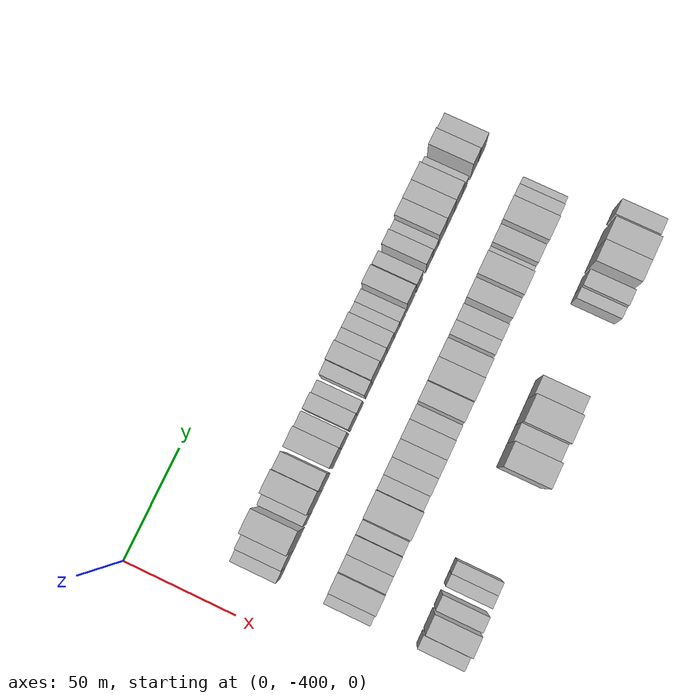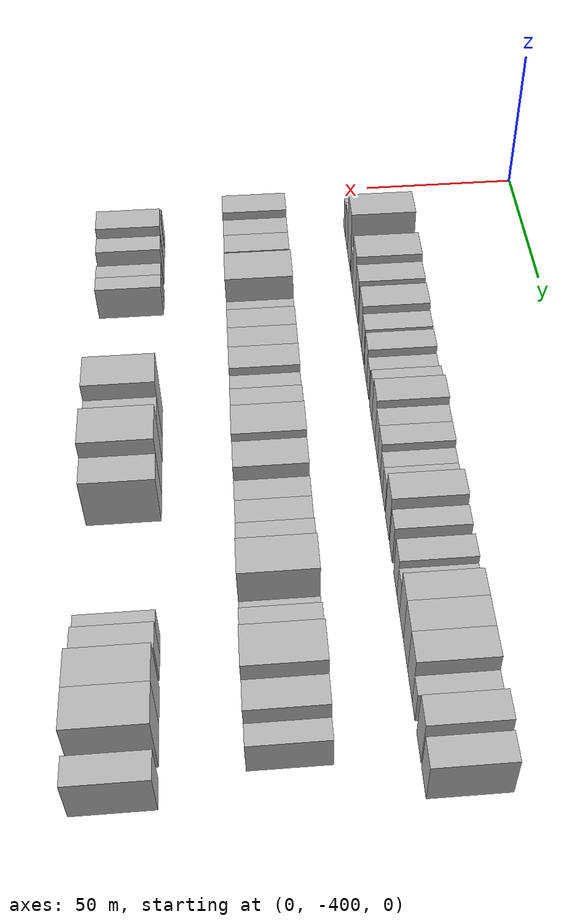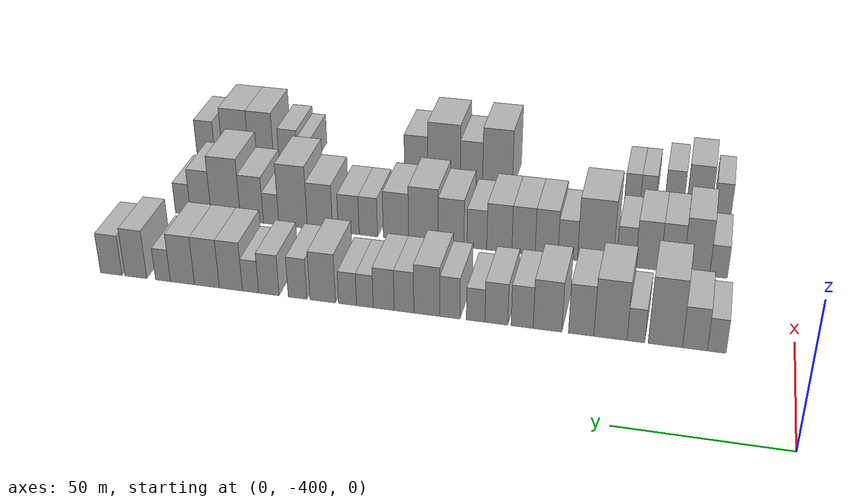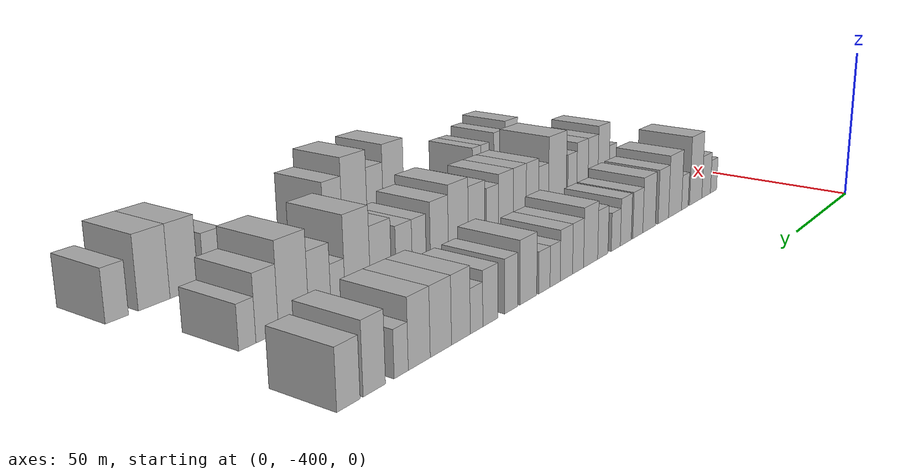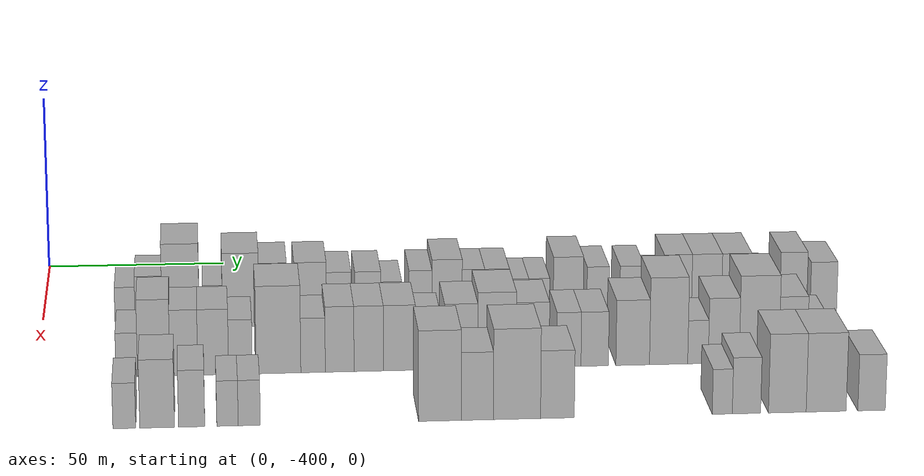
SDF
<sdf version="1.6">
 <world name="default">
  <model name="building_1">
   <static>1</static>
   <pose>50.0000 -377.2630 0 0.000000 0.000000 0.000000</pose>
   <link name="link">
    <pose>0 0 6.00 0 0 0</pose>
    <collision name="collision"><geometry><box><size>20.0000 5.4741 12.0000</size></box></geometry></collision>
    <visual name="visual">
     <cast_shadows>0</cast_shadows>
     <geometry><box><size>20.0000 5.4741 12.0000</size></box></geometry>
     <material>
      <script>
       <uri>model://HANNAS_wall/materials/scripts</uri>
       <uri>model://HANNAS_wall/materials/textures</uri>
       <name>vrc/HANNAS_wall</name>
      </script>
     </material>
    </visual>
   </link>
  </model>
  <model name="building_2">
   <static>1</static>
   <pose>50.0000 -370.8622 0 0.000000 0.000000 0.000000</pose>
   <link name="link">
    <pose>0 0 7.50 0 0 0</pose>
    <collision name="collision"><geometry><box><size>20.0000 7.3275 15.0000</size></box></geometry></collision>
    <visual name="visual">
     <cast_shadows>0</cast_shadows>
     <geometry><box><size>20.0000 7.3275 15.0000</size></box></geometry>
     <material>
      <script>
       <uri>model://HANNAS_wall/materials/scripts</uri>
       <uri>model://HANNAS_wall/materials/textures</uri>
       <name>vrc/HANNAS_wall</name>
      </script>
     </material>
    </visual>
   </link>
  </model>
  <model name="building_3">
   <static>1</static>
   <pose>50.0000 -362.1280 0 0.000000 0.000000 0.000000</pose>
   <link name="link">
    <pose>0 0 12.00 0 0 0</pose>
    <collision name="collision"><geometry><box><size>20.0000 10.1409 24.0000</size></box></geometry></collision>
    <visual name="visual">
     <cast_shadows>0</cast_shadows>
     <geometry><box><size>20.0000 10.1409 24.0000</size></box></geometry>
     <material>
      <script>
       <uri>model://HANNAS_wall/materials/scripts</uri>
       <uri>model://HANNAS_wall/materials/textures</uri>
       <name>vrc/HANNAS_wall</name>
      </script>
     </material>
    </visual>
   </link>
  </model>
  <model name="building_4">
   <static>1</static>
   <pose>50.0000 -353.3951 0 0.000000 0.000000 0.000000</pose>
   <link name="link">
    <pose>0 0 6.00 0 0 0</pose>
    <collision name="collision"><geometry><box><size>20.0000 5.3250 12.0000</size></box></geometry></collision>
    <visual name="visual">
     <cast_shadows>0</cast_shadows>
     <geometry><box><size>20.0000 5.3250 12.0000</size></box></geometry>
     <material>
      <script>
       <uri>model://HANNAS_wall/materials/scripts</uri>
       <uri>model://HANNAS_wall/materials/textures</uri>
       <name>vrc/HANNAS_wall</name>
      </script>
     </material>
    </visual>
   </link>
  </model>
  <model name="building_5">
   <static>1</static>
   <pose>50.0000 -345.7569 0 0.000000 0.000000 0.000000</pose>
   <link name="link">
    <pose>0 0 10.50 0 0 0</pose>
    <collision name="collision"><geometry><box><size>20.0000 9.9514 21.0000</size></box></geometry></collision>
    <visual name="visual">
     <cast_shadows>0</cast_shadows>
     <geometry><box><size>20.0000 9.9514 21.0000</size></box></geometry>
     <material>
      <script>
       <uri>model://HANNAS_wall/materials/scripts</uri>
       <uri>model://HANNAS_wall/materials/textures</uri>
       <name>vrc/HANNAS_wall</name>
      </script>
     </material>
    </visual>
   </link>
  </model>
  <model name="building_6">
   <static>1</static>
   <pose>50.0000 -336.9452 0 0.000000 0.000000 0.000000</pose>
   <link name="link">
    <pose>0 0 9.00 0 0 0</pose>
    <collision name="collision"><geometry><box><size>20.0000 7.6719 18.0000</size></box></geometry></collision>
    <visual name="visual">
     <cast_shadows>0</cast_shadows>
     <geometry><box><size>20.0000 7.6719 18.0000</size></box></geometry>
     <material>
      <script>
       <uri>model://HANNAS_wall/materials/scripts</uri>
       <uri>model://HANNAS_wall/materials/textures</uri>
       <name>vrc/HANNAS_wall</name>
      </script>
     </material>
    </visual>
   </link>
  </model>
  <model name="building_7">
   <static>1</static>
   <pose>50.0000 -326.7164 0 0.000000 0.000000 0.000000</pose>
   <link name="link">
    <pose>0 0 9.00 0 0 0</pose>
    <collision name="collision"><geometry><box><size>20.0000 8.7857 18.0000</size></box></geometry></collision>
    <visual name="visual">
     <cast_shadows>0</cast_shadows>
     <geometry><box><size>20.0000 8.7857 18.0000</size></box></geometry>
     <material>
      <script>
       <uri>model://HANNAS_wall/materials/scripts</uri>
       <uri>model://HANNAS_wall/materials/textures</uri>
       <name>vrc/HANNAS_wall</name>
      </script>
     </material>
    </visual>
   </link>
  </model>
  <model name="building_8">
   <static>1</static>
   <pose>50.0000 -318.9342 0 0.000000 0.000000 0.000000</pose>
   <link name="link">
    <pose>0 0 7.50 0 0 0</pose>
    <collision name="collision"><geometry><box><size>20.0000 6.7786 15.0000</size></box></geometry></collision>
    <visual name="visual">
     <cast_shadows>0</cast_shadows>
     <geometry><box><size>20.0000 6.7786 15.0000</size></box></geometry>
     <material>
      <script>
       <uri>model://HANNAS_wall/materials/scripts</uri>
       <uri>model://HANNAS_wall/materials/textures</uri>
       <name>vrc/HANNAS_wall</name>
      </script>
     </material>
    </visual>
   </link>
  </model>
  <model name="building_9">
   <static>1</static>
   <pose>50.0000 -310.9785 0 0.000000 0.000000 0.000000</pose>
   <link name="link">
    <pose>0 0 7.50 0 0 0</pose>
    <collision name="collision"><geometry><box><size>20.0000 7.1328 15.0000</size></box></geometry></collision>
    <visual name="visual">
     <cast_shadows>0</cast_shadows>
     <geometry><box><size>20.0000 7.1328 15.0000</size></box></geometry>
     <material>
      <script>
       <uri>model://HANNAS_wall/materials/scripts</uri>
       <uri>model://HANNAS_wall/materials/textures</uri>
       <name>vrc/HANNAS_wall</name>
      </script>
     </material>
    </visual>
   </link>
  </model>
  <model name="building_10">
   <static>1</static>
   <pose>50.0000 -304.5359 0 0.000000 0.000000 0.000000</pose>
   <link name="link">
    <pose>0 0 6.00 0 0 0</pose>
    <collision name="collision"><geometry><box><size>20.0000 5.7526 12.0000</size></box></geometry></collision>
    <visual name="visual">
     <cast_shadows>0</cast_shadows>
     <geometry><box><size>20.0000 5.7526 12.0000</size></box></geometry>
     <material>
      <script>
       <uri>model://HANNAS_wall/materials/scripts</uri>
       <uri>model://HANNAS_wall/materials/textures</uri>
       <name>vrc/HANNAS_wall</name>
      </script>
     </material>
    </visual>
   </link>
  </model>
  <model name="building_11">
   <static>1</static>
   <pose>50.0000 -296.5135 0 0.000000 0.000000 0.000000</pose>
   <link name="link">
    <pose>0 0 7.50 0 0 0</pose>
    <collision name="collision"><geometry><box><size>20.0000 6.2922 15.0000</size></box></geometry></collision>
    <visual name="visual">
     <cast_shadows>0</cast_shadows>
     <geometry><box><size>20.0000 6.2922 15.0000</size></box></geometry>
     <material>
      <script>
       <uri>model://HANNAS_wall/materials/scripts</uri>
       <uri>model://HANNAS_wall/materials/textures</uri>
       <name>vrc/HANNAS_wall</name>
      </script>
     </material>
    </visual>
   </link>
  </model>
  <model name="building_12">
   <static>1</static>
   <pose>50.0000 -289.2329 0 0.000000 0.000000 0.000000</pose>
   <link name="link">
    <pose>0 0 9.00 0 0 0</pose>
    <collision name="collision"><geometry><box><size>20.0000 8.2688 18.0000</size></box></geometry></collision>
    <visual name="visual">
     <cast_shadows>0</cast_shadows>
     <geometry><box><size>20.0000 8.2688 18.0000</size></box></geometry>
     <material>
      <script>
       <uri>model://HANNAS_wall/materials/scripts</uri>
       <uri>model://HANNAS_wall/materials/textures</uri>
       <name>vrc/HANNAS_wall</name>
      </script>
     </material>
    </visual>
   </link>
  </model>
  <model name="building_13">
   <static>1</static>
   <pose>50.0000 -281.9908 0 0.000000 0.000000 0.000000</pose>
   <link name="link">
    <pose>0 0 7.50 0 0 0</pose>
    <collision name="collision"><geometry><box><size>20.0000 6.2154 15.0000</size></box></geometry></collision>
    <visual name="visual">
     <cast_shadows>0</cast_shadows>
     <geometry><box><size>20.0000 6.2154 15.0000</size></box></geometry>
     <material>
      <script>
       <uri>model://HANNAS_wall/materials/scripts</uri>
       <uri>model://HANNAS_wall/materials/textures</uri>
       <name>vrc/HANNAS_wall</name>
      </script>
     </material>
    </visual>
   </link>
  </model>
  <model name="building_14">
   <static>1</static>
   <pose>50.0000 -275.5094 0 0.000000 0.000000 0.000000</pose>
   <link name="link">
    <pose>0 0 7.50 0 0 0</pose>
    <collision name="collision"><geometry><box><size>20.0000 6.7475 15.0000</size></box></geometry></collision>
    <visual name="visual">
     <cast_shadows>0</cast_shadows>
     <geometry><box><size>20.0000 6.7475 15.0000</size></box></geometry>
     <material>
      <script>
       <uri>model://HANNAS_wall/materials/scripts</uri>
       <uri>model://HANNAS_wall/materials/textures</uri>
       <name>vrc/HANNAS_wall</name>
      </script>
     </material>
    </visual>
   </link>
  </model>
  <model name="building_15">
   <static>1</static>
   <pose>50.0000 -269.4608 0 0.000000 0.000000 0.000000</pose>
   <link name="link">
    <pose>0 0 6.00 0 0 0</pose>
    <collision name="collision"><geometry><box><size>20.0000 5.3496 12.0000</size></box></geometry></collision>
    <visual name="visual">
     <cast_shadows>0</cast_shadows>
     <geometry><box><size>20.0000 5.3496 12.0000</size></box></geometry>
     <material>
      <script>
       <uri>model://HANNAS_wall/materials/scripts</uri>
       <uri>model://HANNAS_wall/materials/textures</uri>
       <name>vrc/HANNAS_wall</name>
      </script>
     </material>
    </visual>
   </link>
  </model>
  <model name="building_16">
   <static>1</static>
   <pose>50.0000 -263.8933 0 0.000000 0.000000 0.000000</pose>
   <link name="link">
    <pose>0 0 6.00 0 0 0</pose>
    <collision name="collision"><geometry><box><size>20.0000 5.7854 12.0000</size></box></geometry></collision>
    <visual name="visual">
     <cast_shadows>0</cast_shadows>
     <geometry><box><size>20.0000 5.7854 12.0000</size></box></geometry>
     <material>
      <script>
       <uri>model://HANNAS_wall/materials/scripts</uri>
       <uri>model://HANNAS_wall/materials/textures</uri>
       <name>vrc/HANNAS_wall</name>
      </script>
     </material>
    </visual>
   </link>
  </model>
  <model name="building_17">
   <static>1</static>
   <pose>50.0000 -255.8511 0 0.000000 0.000000 0.000000</pose>
   <link name="link">
    <pose>0 0 9.00 0 0 0</pose>
    <collision name="collision"><geometry><box><size>20.0000 8.2990 18.0000</size></box></geometry></collision>
    <visual name="visual">
     <cast_shadows>0</cast_shadows>
     <geometry><box><size>20.0000 8.2990 18.0000</size></box></geometry>
     <material>
      <script>
       <uri>model://HANNAS_wall/materials/scripts</uri>
       <uri>model://HANNAS_wall/materials/textures</uri>
       <name>vrc/HANNAS_wall</name>
      </script>
     </material>
    </visual>
   </link>
  </model>
  <model name="building_18">
   <static>1</static>
   <pose>50.0000 -247.6414 0 0.000000 0.000000 0.000000</pose>
   <link name="link">
    <pose>0 0 7.50 0 0 0</pose>
    <collision name="collision"><geometry><box><size>20.0000 6.1203 15.0000</size></box></geometry></collision>
    <visual name="visual">
     <cast_shadows>0</cast_shadows>
     <geometry><box><size>20.0000 6.1203 15.0000</size></box></geometry>
     <material>
      <script>
       <uri>model://HANNAS_wall/materials/scripts</uri>
       <uri>model://HANNAS_wall/materials/textures</uri>
       <name>vrc/HANNAS_wall</name>
      </script>
     </material>
    </visual>
   </link>
  </model>
  <model name="building_19">
   <static>1</static>
   <pose>50.0000 -238.1910 0 0.000000 0.000000 0.000000</pose>
   <link name="link">
    <pose>0 0 7.50 0 0 0</pose>
    <collision name="collision"><geometry><box><size>20.0000 6.7805 15.0000</size></box></geometry></collision>
    <visual name="visual">
     <cast_shadows>0</cast_shadows>
     <geometry><box><size>20.0000 6.7805 15.0000</size></box></geometry>
     <material>
      <script>
       <uri>model://HANNAS_wall/materials/scripts</uri>
       <uri>model://HANNAS_wall/materials/textures</uri>
       <name>vrc/HANNAS_wall</name>
      </script>
     </material>
    </visual>
   </link>
  </model>
  <model name="building_20">
   <static>1</static>
   <pose>50.0000 -232.1118 0 0.000000 0.000000 0.000000</pose>
   <link name="link">
    <pose>0 0 6.00 0 0 0</pose>
    <collision name="collision"><geometry><box><size>20.0000 5.3778 12.0000</size></box></geometry></collision>
    <visual name="visual">
     <cast_shadows>0</cast_shadows>
     <geometry><box><size>20.0000 5.3778 12.0000</size></box></geometry>
     <material>
      <script>
       <uri>model://HANNAS_wall/materials/scripts</uri>
       <uri>model://HANNAS_wall/materials/textures</uri>
       <name>vrc/HANNAS_wall</name>
      </script>
     </material>
    </visual>
   </link>
  </model>
  <model name="building_21">
   <static>1</static>
   <pose>50.0000 -225.5577 0 0.000000 0.000000 0.000000</pose>
   <link name="link">
    <pose>0 0 9.00 0 0 0</pose>
    <collision name="collision"><geometry><box><size>20.0000 7.7305 18.0000</size></box></geometry></collision>
    <visual name="visual">
     <cast_shadows>0</cast_shadows>
     <geometry><box><size>20.0000 7.7305 18.0000</size></box></geometry>
     <material>
      <script>
       <uri>model://HANNAS_wall/materials/scripts</uri>
       <uri>model://HANNAS_wall/materials/textures</uri>
       <name>vrc/HANNAS_wall</name>
      </script>
     </material>
    </visual>
   </link>
  </model>
  <model name="building_22">
   <static>1</static>
   <pose>50.0000 -217.5257 0 0.000000 0.000000 0.000000</pose>
   <link name="link">
    <pose>0 0 9.00 0 0 0</pose>
    <collision name="collision"><geometry><box><size>20.0000 8.3334 18.0000</size></box></geometry></collision>
    <visual name="visual">
     <cast_shadows>0</cast_shadows>
     <geometry><box><size>20.0000 8.3334 18.0000</size></box></geometry>
     <material>
      <script>
       <uri>model://HANNAS_wall/materials/scripts</uri>
       <uri>model://HANNAS_wall/materials/textures</uri>
       <name>vrc/HANNAS_wall</name>
      </script>
     </material>
    </visual>
   </link>
  </model>
  <model name="building_23">
   <static>1</static>
   <pose>50.0000 -209.2776 0 0.000000 0.000000 0.000000</pose>
   <link name="link">
    <pose>0 0 9.00 0 0 0</pose>
    <collision name="collision"><geometry><box><size>20.0000 8.1629 18.0000</size></box></geometry></collision>
    <visual name="visual">
     <cast_shadows>0</cast_shadows>
     <geometry><box><size>20.0000 8.1629 18.0000</size></box></geometry>
     <material>
      <script>
       <uri>model://HANNAS_wall/materials/scripts</uri>
       <uri>model://HANNAS_wall/materials/textures</uri>
       <name>vrc/HANNAS_wall</name>
      </script>
     </material>
    </visual>
   </link>
  </model>
  <model name="building_24">
   <static>1</static>
   <pose>50.0000 -202.6628 0 0.000000 0.000000 0.000000</pose>
   <link name="link">
    <pose>0 0 6.00 0 0 0</pose>
    <collision name="collision"><geometry><box><size>20.0000 5.0667 12.0000</size></box></geometry></collision>
    <visual name="visual">
     <cast_shadows>0</cast_shadows>
     <geometry><box><size>20.0000 5.0667 12.0000</size></box></geometry>
     <material>
      <script>
       <uri>model://HANNAS_wall/materials/scripts</uri>
       <uri>model://HANNAS_wall/materials/textures</uri>
       <name>vrc/HANNAS_wall</name>
      </script>
     </material>
    </visual>
   </link>
  </model>
  <model name="building_25">
   <static>1</static>
   <pose>50.0000 -193.3806 0 0.000000 0.000000 0.000000</pose>
   <link name="link">
    <pose>0 0 9.00 0 0 0</pose>
    <collision name="collision"><geometry><box><size>20.0000 7.4976 18.0000</size></box></geometry></collision>
    <visual name="visual">
     <cast_shadows>0</cast_shadows>
     <geometry><box><size>20.0000 7.4976 18.0000</size></box></geometry>
     <material>
      <script>
       <uri>model://HANNAS_wall/materials/scripts</uri>
       <uri>model://HANNAS_wall/materials/textures</uri>
       <name>vrc/HANNAS_wall</name>
      </script>
     </material>
    </visual>
   </link>
  </model>
  <model name="building_26">
   <static>1</static>
   <pose>50.0000 -184.9267 0 0.000000 0.000000 0.000000</pose>
   <link name="link">
    <pose>0 0 7.50 0 0 0</pose>
    <collision name="collision"><geometry><box><size>20.0000 7.4101 15.0000</size></box></geometry></collision>
    <visual name="visual">
     <cast_shadows>0</cast_shadows>
     <geometry><box><size>20.0000 7.4101 15.0000</size></box></geometry>
     <material>
      <script>
       <uri>model://HANNAS_wall/materials/scripts</uri>
       <uri>model://HANNAS_wall/materials/textures</uri>
       <name>vrc/HANNAS_wall</name>
      </script>
     </material>
    </visual>
   </link>
  </model>
  <model name="building_89">
   <static>1</static>
   <pose>90.0000 -376.1775 0 0.000000 0.000000 0.000000</pose>
   <link name="link">
    <pose>0 0 6.00 0 0 0</pose>
    <collision name="collision"><geometry><box><size>20.0000 5.6451 12.0000</size></box></geometry></collision>
    <visual name="visual">
     <cast_shadows>0</cast_shadows>
     <geometry><box><size>20.0000 5.6451 12.0000</size></box></geometry>
     <material>
      <script>
       <uri>model://HANNAS_wall/materials/scripts</uri>
       <uri>model://HANNAS_wall/materials/textures</uri>
       <name>vrc/HANNAS_wall</name>
      </script>
     </material>
    </visual>
   </link>
  </model>
  <model name="building_90">
   <static>1</static>
   <pose>90.0000 -369.1262 0 0.000000 0.000000 0.000000</pose>
   <link name="link">
    <pose>0 0 10.50 0 0 0</pose>
    <collision name="collision"><geometry><box><size>20.0000 8.4574 21.0000</size></box></geometry></collision>
    <visual name="visual">
     <cast_shadows>0</cast_shadows>
     <geometry><box><size>20.0000 8.4574 21.0000</size></box></geometry>
     <material>
      <script>
       <uri>model://HANNAS_wall/materials/scripts</uri>
       <uri>model://HANNAS_wall/materials/textures</uri>
       <name>vrc/HANNAS_wall</name>
      </script>
     </material>
    </visual>
   </link>
  </model>
  <model name="building_91">
   <static>1</static>
   <pose>90.0000 -361.2629 0 0.000000 0.000000 0.000000</pose>
   <link name="link">
    <pose>0 0 9.00 0 0 0</pose>
    <collision name="collision"><geometry><box><size>20.0000 7.2692 18.0000</size></box></geometry></collision>
    <visual name="visual">
     <cast_shadows>0</cast_shadows>
     <geometry><box><size>20.0000 7.2692 18.0000</size></box></geometry>
     <material>
      <script>
       <uri>model://HANNAS_wall/materials/scripts</uri>
       <uri>model://HANNAS_wall/materials/textures</uri>
       <name>vrc/HANNAS_wall</name>
      </script>
     </material>
    </visual>
   </link>
  </model>
  <model name="building_92">
   <static>1</static>
   <pose>90.0000 -353.6041 0 0.000000 0.000000 0.000000</pose>
   <link name="link">
    <pose>0 0 9.00 0 0 0</pose>
    <collision name="collision"><geometry><box><size>20.0000 8.0483 18.0000</size></box></geometry></collision>
    <visual name="visual">
     <cast_shadows>0</cast_shadows>
     <geometry><box><size>20.0000 8.0483 18.0000</size></box></geometry>
     <material>
      <script>
       <uri>model://HANNAS_wall/materials/scripts</uri>
       <uri>model://HANNAS_wall/materials/textures</uri>
       <name>vrc/HANNAS_wall</name>
      </script>
     </material>
    </visual>
   </link>
  </model>
  <model name="building_93">
   <static>1</static>
   <pose>90.0000 -346.4735 0 0.000000 0.000000 0.000000</pose>
   <link name="link">
    <pose>0 0 7.50 0 0 0</pose>
    <collision name="collision"><geometry><box><size>20.0000 6.2129 15.0000</size></box></geometry></collision>
    <visual name="visual">
     <cast_shadows>0</cast_shadows>
     <geometry><box><size>20.0000 6.2129 15.0000</size></box></geometry>
     <material>
      <script>
       <uri>model://HANNAS_wall/materials/scripts</uri>
       <uri>model://HANNAS_wall/materials/textures</uri>
       <name>vrc/HANNAS_wall</name>
      </script>
     </material>
    </visual>
   </link>
  </model>
  <model name="building_94">
   <static>1</static>
   <pose>90.0000 -336.5170 0 0.000000 0.000000 0.000000</pose>
   <link name="link">
    <pose>0 0 12.00 0 0 0</pose>
    <collision name="collision"><geometry><box><size>20.0000 11.7001 24.0000</size></box></geometry></collision>
    <visual name="visual">
     <cast_shadows>0</cast_shadows>
     <geometry><box><size>20.0000 11.7001 24.0000</size></box></geometry>
     <material>
      <script>
       <uri>model://HANNAS_wall/materials/scripts</uri>
       <uri>model://HANNAS_wall/materials/textures</uri>
       <name>vrc/HANNAS_wall</name>
      </script>
     </material>
    </visual>
   </link>
  </model>
  <model name="building_95">
   <static>1</static>
   <pose>90.0000 -327.4513 0 0.000000 0.000000 0.000000</pose>
   <link name="link">
    <pose>0 0 7.50 0 0 0</pose>
    <collision name="collision"><geometry><box><size>20.0000 6.4314 15.0000</size></box></geometry></collision>
    <visual name="visual">
     <cast_shadows>0</cast_shadows>
     <geometry><box><size>20.0000 6.4314 15.0000</size></box></geometry>
     <material>
      <script>
       <uri>model://HANNAS_wall/materials/scripts</uri>
       <uri>model://HANNAS_wall/materials/textures</uri>
       <name>vrc/HANNAS_wall</name>
      </script>
     </material>
    </visual>
   </link>
  </model>
  <model name="building_96">
   <static>1</static>
   <pose>90.0000 -320.4558 0 0.000000 0.000000 0.000000</pose>
   <link name="link">
    <pose>0 0 9.00 0 0 0</pose>
    <collision name="collision"><geometry><box><size>20.0000 7.5596 18.0000</size></box></geometry></collision>
    <visual name="visual">
     <cast_shadows>0</cast_shadows>
     <geometry><box><size>20.0000 7.5596 18.0000</size></box></geometry>
     <material>
      <script>
       <uri>model://HANNAS_wall/materials/scripts</uri>
       <uri>model://HANNAS_wall/materials/textures</uri>
       <name>vrc/HANNAS_wall</name>
      </script>
     </material>
    </visual>
   </link>
  </model>
  <model name="building_97">
   <static>1</static>
   <pose>90.0000 -312.8033 0 0.000000 0.000000 0.000000</pose>
   <link name="link">
    <pose>0 0 9.00 0 0 0</pose>
    <collision name="collision"><geometry><box><size>20.0000 7.7454 18.0000</size></box></geometry></collision>
    <visual name="visual">
     <cast_shadows>0</cast_shadows>
     <geometry><box><size>20.0000 7.7454 18.0000</size></box></geometry>
     <material>
      <script>
       <uri>model://HANNAS_wall/materials/scripts</uri>
       <uri>model://HANNAS_wall/materials/textures</uri>
       <name>vrc/HANNAS_wall</name>
      </script>
     </material>
    </visual>
   </link>
  </model>
  <model name="building_98">
   <static>1</static>
   <pose>90.0000 -304.7247 0 0.000000 0.000000 0.000000</pose>
   <link name="link">
    <pose>0 0 9.00 0 0 0</pose>
    <collision name="collision"><geometry><box><size>20.0000 8.4118 18.0000</size></box></geometry></collision>
    <visual name="visual">
     <cast_shadows>0</cast_shadows>
     <geometry><box><size>20.0000 8.4118 18.0000</size></box></geometry>
     <material>
      <script>
       <uri>model://HANNAS_wall/materials/scripts</uri>
       <uri>model://HANNAS_wall/materials/textures</uri>
       <name>vrc/HANNAS_wall</name>
      </script>
     </material>
    </visual>
   </link>
  </model>
  <model name="building_99">
   <static>1</static>
   <pose>90.0000 -297.1620 0 0.000000 0.000000 0.000000</pose>
   <link name="link">
    <pose>0 0 7.50 0 0 0</pose>
    <collision name="collision"><geometry><box><size>20.0000 6.7135 15.0000</size></box></geometry></collision>
    <visual name="visual">
     <cast_shadows>0</cast_shadows>
     <geometry><box><size>20.0000 6.7135 15.0000</size></box></geometry>
     <material>
      <script>
       <uri>model://HANNAS_wall/materials/scripts</uri>
       <uri>model://HANNAS_wall/materials/textures</uri>
       <name>vrc/HANNAS_wall</name>
      </script>
     </material>
    </visual>
   </link>
  </model>
  <model name="building_100">
   <static>1</static>
   <pose>90.0000 -288.4362 0 0.000000 0.000000 0.000000</pose>
   <link name="link">
    <pose>0 0 9.00 0 0 0</pose>
    <collision name="collision"><geometry><box><size>20.0000 8.7381 18.0000</size></box></geometry></collision>
    <visual name="visual">
     <cast_shadows>0</cast_shadows>
     <geometry><box><size>20.0000 8.7381 18.0000</size></box></geometry>
     <material>
      <script>
       <uri>model://HANNAS_wall/materials/scripts</uri>
       <uri>model://HANNAS_wall/materials/textures</uri>
       <name>vrc/HANNAS_wall</name>
      </script>
     </material>
    </visual>
   </link>
  </model>
  <model name="building_101">
   <static>1</static>
   <pose>90.0000 -278.9937 0 0.000000 0.000000 0.000000</pose>
   <link name="link">
    <pose>0 0 10.50 0 0 0</pose>
    <collision name="collision"><geometry><box><size>20.0000 10.1469 21.0000</size></box></geometry></collision>
    <visual name="visual">
     <cast_shadows>0</cast_shadows>
     <geometry><box><size>20.0000 10.1469 21.0000</size></box></geometry>
     <material>
      <script>
       <uri>model://HANNAS_wall/materials/scripts</uri>
       <uri>model://HANNAS_wall/materials/textures</uri>
       <name>vrc/HANNAS_wall</name>
      </script>
     </material>
    </visual>
   </link>
  </model>
  <model name="building_102">
   <static>1</static>
   <pose>90.0000 -269.5476 0 0.000000 0.000000 0.000000</pose>
   <link name="link">
    <pose>0 0 9.00 0 0 0</pose>
    <collision name="collision"><geometry><box><size>20.0000 8.7453 18.0000</size></box></geometry></collision>
    <visual name="visual">
     <cast_shadows>0</cast_shadows>
     <geometry><box><size>20.0000 8.7453 18.0000</size></box></geometry>
     <material>
      <script>
       <uri>model://HANNAS_wall/materials/scripts</uri>
       <uri>model://HANNAS_wall/materials/textures</uri>
       <name>vrc/HANNAS_wall</name>
      </script>
     </material>
    </visual>
   </link>
  </model>
  <model name="building_103">
   <static>1</static>
   <pose>90.0000 -259.9544 0 0.000000 0.000000 0.000000</pose>
   <link name="link">
    <pose>0 0 7.50 0 0 0</pose>
    <collision name="collision"><geometry><box><size>20.0000 6.4412 15.0000</size></box></geometry></collision>
    <visual name="visual">
     <cast_shadows>0</cast_shadows>
     <geometry><box><size>20.0000 6.4412 15.0000</size></box></geometry>
     <material>
      <script>
       <uri>model://HANNAS_wall/materials/scripts</uri>
       <uri>model://HANNAS_wall/materials/textures</uri>
       <name>vrc/HANNAS_wall</name>
      </script>
     </material>
    </visual>
   </link>
  </model>
  <model name="building_104">
   <static>1</static>
   <pose>90.0000 -253.0996 0 0.000000 0.000000 0.000000</pose>
   <link name="link">
    <pose>0 0 7.50 0 0 0</pose>
    <collision name="collision"><geometry><box><size>20.0000 7.2683 15.0000</size></box></geometry></collision>
    <visual name="visual">
     <cast_shadows>0</cast_shadows>
     <geometry><box><size>20.0000 7.2683 15.0000</size></box></geometry>
     <material>
      <script>
       <uri>model://HANNAS_wall/materials/scripts</uri>
       <uri>model://HANNAS_wall/materials/textures</uri>
       <name>vrc/HANNAS_wall</name>
      </script>
     </material>
    </visual>
   </link>
  </model>
  <model name="building_105">
   <static>1</static>
   <pose>90.0000 -242.9985 0 0.000000 0.000000 0.000000</pose>
   <link name="link">
    <pose>0 0 9.00 0 0 0</pose>
    <collision name="collision"><geometry><box><size>20.0000 8.9339 18.0000</size></box></geometry></collision>
    <visual name="visual">
     <cast_shadows>0</cast_shadows>
     <geometry><box><size>20.0000 8.9339 18.0000</size></box></geometry>
     <material>
      <script>
       <uri>model://HANNAS_wall/materials/scripts</uri>
       <uri>model://HANNAS_wall/materials/textures</uri>
       <name>vrc/HANNAS_wall</name>
      </script>
     </material>
    </visual>
   </link>
  </model>
  <model name="building_106">
   <static>1</static>
   <pose>90.0000 -233.4489 0 0.000000 0.000000 0.000000</pose>
   <link name="link">
    <pose>0 0 12.00 0 0 0</pose>
    <collision name="collision"><geometry><box><size>20.0000 10.1653 24.0000</size></box></geometry></collision>
    <visual name="visual">
     <cast_shadows>0</cast_shadows>
     <geometry><box><size>20.0000 10.1653 24.0000</size></box></geometry>
     <material>
      <script>
       <uri>model://HANNAS_wall/materials/scripts</uri>
       <uri>model://HANNAS_wall/materials/textures</uri>
       <name>vrc/HANNAS_wall</name>
      </script>
     </material>
    </visual>
   </link>
  </model>
  <model name="building_107">
   <static>1</static>
   <pose>90.0000 -225.6178 0 0.000000 0.000000 0.000000</pose>
   <link name="link">
    <pose>0 0 6.00 0 0 0</pose>
    <collision name="collision"><geometry><box><size>20.0000 5.4969 12.0000</size></box></geometry></collision>
    <visual name="visual">
     <cast_shadows>0</cast_shadows>
     <geometry><box><size>20.0000 5.4969 12.0000</size></box></geometry>
     <material>
      <script>
       <uri>model://HANNAS_wall/materials/scripts</uri>
       <uri>model://HANNAS_wall/materials/textures</uri>
       <name>vrc/HANNAS_wall</name>
      </script>
     </material>
    </visual>
   </link>
  </model>
  <model name="building_108">
   <static>1</static>
   <pose>90.0000 -218.7518 0 0.000000 0.000000 0.000000</pose>
   <link name="link">
    <pose>0 0 9.00 0 0 0</pose>
    <collision name="collision"><geometry><box><size>20.0000 8.2350 18.0000</size></box></geometry></collision>
    <visual name="visual">
     <cast_shadows>0</cast_shadows>
     <geometry><box><size>20.0000 8.2350 18.0000</size></box></geometry>
     <material>
      <script>
       <uri>model://HANNAS_wall/materials/scripts</uri>
       <uri>model://HANNAS_wall/materials/textures</uri>
       <name>vrc/HANNAS_wall</name>
      </script>
     </material>
    </visual>
   </link>
  </model>
  <model name="building_109">
   <static>1</static>
   <pose>90.0000 -209.3263 0 0.000000 0.000000 0.000000</pose>
   <link name="link">
    <pose>0 0 12.00 0 0 0</pose>
    <collision name="collision"><geometry><box><size>20.0000 10.6162 24.0000</size></box></geometry></collision>
    <visual name="visual">
     <cast_shadows>0</cast_shadows>
     <geometry><box><size>20.0000 10.6162 24.0000</size></box></geometry>
     <material>
      <script>
       <uri>model://HANNAS_wall/materials/scripts</uri>
       <uri>model://HANNAS_wall/materials/textures</uri>
       <name>vrc/HANNAS_wall</name>
      </script>
     </material>
    </visual>
   </link>
  </model>
  <model name="building_110">
   <static>1</static>
   <pose>90.0000 -200.2328 0 0.000000 0.000000 0.000000</pose>
   <link name="link">
    <pose>0 0 9.00 0 0 0</pose>
    <collision name="collision"><geometry><box><size>20.0000 7.5708 18.0000</size></box></geometry></collision>
    <visual name="visual">
     <cast_shadows>0</cast_shadows>
     <geometry><box><size>20.0000 7.5708 18.0000</size></box></geometry>
     <material>
      <script>
       <uri>model://HANNAS_wall/materials/scripts</uri>
       <uri>model://HANNAS_wall/materials/textures</uri>
       <name>vrc/HANNAS_wall</name>
      </script>
     </material>
    </visual>
   </link>
  </model>
  <model name="building_111">
   <static>1</static>
   <pose>90.0000 -193.6752 0 0.000000 0.000000 0.000000</pose>
   <link name="link">
    <pose>0 0 6.00 0 0 0</pose>
    <collision name="collision"><geometry><box><size>20.0000 5.5443 12.0000</size></box></geometry></collision>
    <visual name="visual">
     <cast_shadows>0</cast_shadows>
     <geometry><box><size>20.0000 5.5443 12.0000</size></box></geometry>
     <material>
      <script>
       <uri>model://HANNAS_wall/materials/scripts</uri>
       <uri>model://HANNAS_wall/materials/textures</uri>
       <name>vrc/HANNAS_wall</name>
      </script>
     </material>
    </visual>
   </link>
  </model>
  <model name="building_179">
   <static>1</static>
   <pose>130.0000 -376.1456 0 0.000000 0.000000 0.000000</pose>
   <link name="link">
    <pose>0 0 6.00 0 0 0</pose>
    <collision name="collision"><geometry><box><size>20.0000 5.7088 12.0000</size></box></geometry></collision>
    <visual name="visual">
     <cast_shadows>0</cast_shadows>
     <geometry><box><size>20.0000 5.7088 12.0000</size></box></geometry>
     <material>
      <script>
       <uri>model://HANNAS_wall/materials/scripts</uri>
       <uri>model://HANNAS_wall/materials/textures</uri>
       <name>vrc/HANNAS_wall</name>
      </script>
     </material>
    </visual>
   </link>
  </model>
  <model name="building_180">
   <static>1</static>
   <pose>130.0000 -367.9462 0 0.000000 0.000000 0.000000</pose>
   <link name="link">
    <pose>0 0 9.00 0 0 0</pose>
    <collision name="collision"><geometry><box><size>20.0000 8.6900 18.0000</size></box></geometry></collision>
    <visual name="visual">
     <cast_shadows>0</cast_shadows>
     <geometry><box><size>20.0000 8.6900 18.0000</size></box></geometry>
     <material>
      <script>
       <uri>model://HANNAS_wall/materials/scripts</uri>
       <uri>model://HANNAS_wall/materials/textures</uri>
       <name>vrc/HANNAS_wall</name>
      </script>
     </material>
    </visual>
   </link>
  </model>
  <model name="building_181">
   <static>1</static>
   <pose>130.0000 -359.3139 0 0.000000 0.000000 0.000000</pose>
   <link name="link">
    <pose>0 0 7.50 0 0 0</pose>
    <collision name="collision"><geometry><box><size>20.0000 6.5744 15.0000</size></box></geometry></collision>
    <visual name="visual">
     <cast_shadows>0</cast_shadows>
     <geometry><box><size>20.0000 6.5744 15.0000</size></box></geometry>
     <material>
      <script>
       <uri>model://HANNAS_wall/materials/scripts</uri>
       <uri>model://HANNAS_wall/materials/textures</uri>
       <name>vrc/HANNAS_wall</name>
      </script>
     </material>
    </visual>
   </link>
  </model>
  <model name="building_182">
   <static>1</static>
   <pose>130.0000 -350.3488 0 0.000000 0.000000 0.000000</pose>
   <link name="link">
    <pose>0 0 6.00 0 0 0</pose>
    <collision name="collision"><geometry><box><size>20.0000 5.3558 12.0000</size></box></geometry></collision>
    <visual name="visual">
     <cast_shadows>0</cast_shadows>
     <geometry><box><size>20.0000 5.3558 12.0000</size></box></geometry>
     <material>
      <script>
       <uri>model://HANNAS_wall/materials/scripts</uri>
       <uri>model://HANNAS_wall/materials/textures</uri>
       <name>vrc/HANNAS_wall</name>
      </script>
     </material>
    </visual>
   </link>
  </model>
  <model name="building_183">
   <static>1</static>
   <pose>130.0000 -344.8921 0 0.000000 0.000000 0.000000</pose>
   <link name="link">
    <pose>0 0 6.00 0 0 0</pose>
    <collision name="collision"><geometry><box><size>20.0000 5.5577 12.0000</size></box></geometry></collision>
    <visual name="visual">
     <cast_shadows>0</cast_shadows>
     <geometry><box><size>20.0000 5.5577 12.0000</size></box></geometry>
     <material>
      <script>
       <uri>model://HANNAS_wall/materials/scripts</uri>
       <uri>model://HANNAS_wall/materials/textures</uri>
       <name>vrc/HANNAS_wall</name>
      </script>
     </material>
    </visual>
   </link>
  </model>
  <model name="building_184">
   <static>1</static>
   <pose>130.0000 -296.9041 0 0.000000 0.000000 0.000000</pose>
   <link name="link">
    <pose>0 0 12.00 0 0 0</pose>
    <collision name="collision"><geometry><box><size>20.0000 10.8060 24.0000</size></box></geometry></collision>
    <visual name="visual">
     <cast_shadows>0</cast_shadows>
     <geometry><box><size>20.0000 10.8060 24.0000</size></box></geometry>
     <material>
      <script>
       <uri>model://HANNAS_wall/materials/scripts</uri>
       <uri>model://HANNAS_wall/materials/textures</uri>
       <name>vrc/HANNAS_wall</name>
      </script>
     </material>
    </visual>
   </link>
  </model>
  <model name="building_185">
   <static>1</static>
   <pose>130.0000 -287.4436 0 0.000000 0.000000 0.000000</pose>
   <link name="link">
    <pose>0 0 9.00 0 0 0</pose>
    <collision name="collision"><geometry><box><size>20.0000 8.1151 18.0000</size></box></geometry></collision>
    <visual name="visual">
     <cast_shadows>0</cast_shadows>
     <geometry><box><size>20.0000 8.1151 18.0000</size></box></geometry>
     <material>
      <script>
       <uri>model://HANNAS_wall/materials/scripts</uri>
       <uri>model://HANNAS_wall/materials/textures</uri>
       <name>vrc/HANNAS_wall</name>
      </script>
     </material>
    </visual>
   </link>
  </model>
  <model name="building_186">
   <static>1</static>
   <pose>130.0000 -277.4099 0 0.000000 0.000000 0.000000</pose>
   <link name="link">
    <pose>0 0 12.00 0 0 0</pose>
    <collision name="collision"><geometry><box><size>20.0000 11.9521 24.0000</size></box></geometry></collision>
    <visual name="visual">
     <cast_shadows>0</cast_shadows>
     <geometry><box><size>20.0000 11.9521 24.0000</size></box></geometry>
     <material>
      <script>
       <uri>model://HANNAS_wall/materials/scripts</uri>
       <uri>model://HANNAS_wall/materials/textures</uri>
       <name>vrc/HANNAS_wall</name>
      </script>
     </material>
    </visual>
   </link>
  </model>
  <model name="building_187">
   <static>1</static>
   <pose>130.0000 -267.1541 0 0.000000 0.000000 0.000000</pose>
   <link name="link">
    <pose>0 0 9.00 0 0 0</pose>
    <collision name="collision"><geometry><box><size>20.0000 8.5595 18.0000</size></box></geometry></collision>
    <visual name="visual">
     <cast_shadows>0</cast_shadows>
     <geometry><box><size>20.0000 8.5595 18.0000</size></box></geometry>
     <material>
      <script>
       <uri>model://HANNAS_wall/materials/scripts</uri>
       <uri>model://HANNAS_wall/materials/textures</uri>
       <name>vrc/HANNAS_wall</name>
      </script>
     </material>
    </visual>
   </link>
  </model>
  <model name="building_188">
   <static>1</static>
   <pose>130.0000 -225.1879 0 0.000000 0.000000 0.000000</pose>
   <link name="link">
    <pose>0 0 6.00 0 0 0</pose>
    <collision name="collision"><geometry><box><size>20.0000 5.1243 12.0000</size></box></geometry></collision>
    <visual name="visual">
     <cast_shadows>0</cast_shadows>
     <geometry><box><size>20.0000 5.1243 12.0000</size></box></geometry>
     <material>
      <script>
       <uri>model://HANNAS_wall/materials/scripts</uri>
       <uri>model://HANNAS_wall/materials/textures</uri>
       <name>vrc/HANNAS_wall</name>
      </script>
     </material>
    </visual>
   </link>
  </model>
  <model name="building_189">
   <static>1</static>
   <pose>130.0000 -219.0042 0 0.000000 0.000000 0.000000</pose>
   <link name="link">
    <pose>0 0 7.50 0 0 0</pose>
    <collision name="collision"><geometry><box><size>20.0000 7.2430 15.0000</size></box></geometry></collision>
    <visual name="visual">
     <cast_shadows>0</cast_shadows>
     <geometry><box><size>20.0000 7.2430 15.0000</size></box></geometry>
     <material>
      <script>
       <uri>model://HANNAS_wall/materials/scripts</uri>
       <uri>model://HANNAS_wall/materials/textures</uri>
       <name>vrc/HANNAS_wall</name>
      </script>
     </material>
    </visual>
   </link>
  </model>
  <model name="building_190">
   <static>1</static>
   <pose>130.0000 -208.5525 0 0.000000 0.000000 0.000000</pose>
   <link name="link">
    <pose>0 0 10.50 0 0 0</pose>
    <collision name="collision"><geometry><box><size>20.0000 9.6604 21.0000</size></box></geometry></collision>
    <visual name="visual">
     <cast_shadows>0</cast_shadows>
     <geometry><box><size>20.0000 9.6604 21.0000</size></box></geometry>
     <material>
      <script>
       <uri>model://HANNAS_wall/materials/scripts</uri>
       <uri>model://HANNAS_wall/materials/textures</uri>
       <name>vrc/HANNAS_wall</name>
      </script>
     </material>
    </visual>
   </link>
  </model>
  <model name="building_191">
   <static>1</static>
   <pose>130.0000 -198.5933 0 0.000000 0.000000 0.000000</pose>
   <link name="link">
    <pose>0 0 10.50 0 0 0</pose>
    <collision name="collision"><geometry><box><size>20.0000 10.2581 21.0000</size></box></geometry></collision>
    <visual name="visual">
     <cast_shadows>0</cast_shadows>
     <geometry><box><size>20.0000 10.2581 21.0000</size></box></geometry>
     <material>
      <script>
       <uri>model://HANNAS_wall/materials/scripts</uri>
       <uri>model://HANNAS_wall/materials/textures</uri>
       <name>vrc/HANNAS_wall</name>
      </script>
     </material>
    </visual>
   </link>
  </model>
  <model name="building_192">
   <static>1</static>
   <pose>130.0000 -186.9375 0 0.000000 0.000000 0.000000</pose>
   <link name="link">
    <pose>0 0 7.50 0 0 0</pose>
    <collision name="collision"><geometry><box><size>20.0000 7.0536 15.0000</size></box></geometry></collision>
    <visual name="visual">
     <cast_shadows>0</cast_shadows>
     <geometry><box><size>20.0000 7.0536 15.0000</size></box></geometry>
     <material>
      <script>
       <uri>model://HANNAS_wall/materials/scripts</uri>
       <uri>model://HANNAS_wall/materials/textures</uri>
       <name>vrc/HANNAS_wall</name>
      </script>
     </material>
    </visual>
   </link>
  </model>
 </world>
</sdf>
